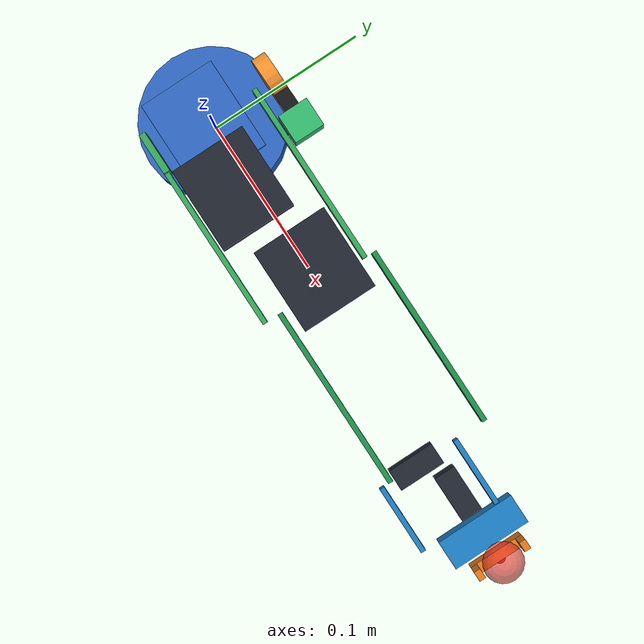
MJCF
<mujoco model="robot_arm_v8_manufacturable">
  <compiler angle="degree" autolimits="true"/>
  <option timestep="0.002" gravity="0 0 -9.80665" integrator="implicitfast"/>
  <default>
    <joint damping="0.02" armature="0.00005" limited="true"/>
    <geom condim="3" friction="0.7 0.01 0.001" solref="0.004 1" solimp="0.95 0.99 0.001" density="0" rgba="0.2 0.65 0.35 1"/>
  </default>
  <worldbody>
    <geom name="base_case" type="cylinder" pos="0 0 0.027" size="0.044 0.027" rgba="0.18 0.40 0.75 1" mass="0.106813"/>
    <body name="turntable" pos="0 0 0.079">
      <joint name="J1_yaw" type="hinge" axis="0 0 1" range="-180 180"/>
      <inertial pos="0.019502 0.003291 -0.010183" mass="0.237298" diaginertia="0.00028 0.00034 0.00040"/>
      <geom name="turntable_deck" type="box" pos="0 -0.006 -0.013" size="0.029 0.024 0.003" rgba="0.18 0.40 0.75 1"/>
      <geom name="j2_servo" type="box" pos="0.04070 -0.0118 0" size="0.0268 0.0238 0.010824" rgba="0.12 0.14 0.18 1"/>
      <geom name="j2_passive_cheek" type="box" pos="0 -0.038 0" size="0.013 0.002 0.019"/>
      <geom name="j2_input_bridge" type="box" pos="0.030545 0.0415 0.008" size="0.009 0.0095 0.016" rgba="0.20 0.72 0.42 1"/>
      <geom name="j2_driver_16t" type="cylinder" pos="0.030545 0.0415 0" euler="90 0 0" size="0.0076 0.0045" contype="0" conaffinity="0" rgba="0.92 0.55 0.16 1"/>
      <geom name="j2_belt_upper" type="box" pos="0.01527 0.0415 0.0120" euler="0 -13.6 0" size="0.016 0.0045 0.0012" contype="0" conaffinity="0" rgba="0.08 0.08 0.08 1"/>
      <geom name="j2_belt_lower" type="box" pos="0.01527 0.0415 -0.0120" euler="0 13.6 0" size="0.016 0.0045 0.0012" contype="0" conaffinity="0" rgba="0.08 0.08 0.08 1"/>
      <body name="upper_arm" pos="0 0 0">
        <joint name="J2_shoulder" type="hinge" axis="0 1 0" range="-90 0"/>
        <inertial pos="0.085582 0.003172 0.002909" mass="0.097406" diaginertia="0.000010 0.00072 0.00072"/>
        <geom name="j2_driven_32t" type="cylinder" pos="0 0.0415 0" euler="90 0 0" size="0.01525 0.0045" contype="0" conaffinity="0" rgba="0.92 0.55 0.16 1"/>
        <geom name="ua_l_top" type="box" pos="0.0575 -0.0385 0.008" size="0.0575 0.0015 0.002"/>
        <geom name="ua_l_bottom" type="box" pos="0.0575 -0.0385 -0.008" size="0.0575 0.0015 0.002"/>
        <geom name="ua_r_top" type="box" pos="0.0575 0.0295 0.008" size="0.0575 0.0015 0.002"/>
        <geom name="ua_r_bottom" type="box" pos="0.0575 0.0295 -0.008" size="0.0575 0.0015 0.002"/>
        <geom name="j3_servo" type="box" pos="0.10485 0.0018 0" size="0.0268 0.0238 0.010824" rgba="0.12 0.14 0.18 1"/>
        <body name="forearm" pos="0.115 0 0">
          <joint name="J3_elbow" type="hinge" axis="0 1 0" range="-90 150"/>
          <inertial pos="0.084706 -0.001301 0.002555" mass="0.031415" diaginertia="0.000004 0.00019 0.00019"/>
          <geom name="fa_l_top" type="box" pos="0.0575 -0.0285 0.008" size="0.0575 0.0015 0.002" rgba="0.1 0.55 0.28 1"/>
          <geom name="fa_l_bottom" type="box" pos="0.0575 -0.0285 -0.008" size="0.0575 0.0015 0.002" rgba="0.1 0.55 0.28 1"/>
          <geom name="fa_r_top" type="box" pos="0.0575 0.0355 0.008" size="0.0575 0.0015 0.002" rgba="0.1 0.55 0.28 1"/>
          <geom name="fa_r_bottom" type="box" pos="0.0575 0.0355 -0.008" size="0.0575 0.0015 0.002" rgba="0.1 0.55 0.28 1"/>
          <geom name="j4_servo" type="box" pos="0.115 -0.0115 0.0053" size="0.006494 0.0143 0.016232" rgba="0.12 0.14 0.18 1"/>
          <body name="wrist_pitch" pos="0.115 0 0">
            <joint name="J4_wrist_pitch" type="hinge" axis="0 1 0" range="-70 60"/>
            <inertial pos="0.035341 -0.007261 0.001114" mass="0.069627" diaginertia="0.000006 0.00005 0.00005"/>
            <geom name="wp_l" type="box" pos="0.0215 -0.0345 0" size="0.0215 0.0015 0.010" rgba="0.1 0.48 0.75 1"/>
            <geom name="wp_r" type="box" pos="0.0215 0.0155 0" size="0.0215 0.0015 0.010" rgba="0.1 0.48 0.75 1"/>
            <geom name="j5_servo" type="box" pos="0.0255 0 0.0053" size="0.0143 0.006494 0.016232" rgba="0.12 0.14 0.18 1"/>
            <geom name="j5_bearing_housing" type="box" pos="0.052 0 0" size="0.009 0.0245 0.015" rgba="0.1 0.48 0.75 1"/>
            <body name="tool" pos="0.043 0 0">
              <joint name="J5_wrist_roll" type="hinge" axis="1 0 0" range="-180 180"/>
              <inertial pos="0.019127 -0.000068 0.002899" mass="0.016010" diaginertia="0.000004 0.000008 0.000008"/>
              <geom name="tool_palm" type="box" pos="0.025 0 0" size="0.003 0.017 0.013" rgba="0.88 0.46 0.1 1"/>
              <geom name="tool_finger_l" type="box" pos="0.025 -0.015 0.030" size="0.003 0.002 0.017" rgba="0.88 0.46 0.1 1"/>
              <geom name="tool_finger_r" type="box" pos="0.025 0.015 0.030" size="0.003 0.002 0.017" rgba="0.88 0.46 0.1 1"/>
              <geom name="payload_50g" type="sphere" pos="0.028 0 0.030" size="0.012" mass="0.050" rgba="0.9 0.2 0.15 0.65"/>
              <site name="tool_tip" pos="0.028 0 0" size="0.003" rgba="1 0 0 1"/>
            </body>
          </body>
        </body>
      </body>
    </body>
  </worldbody>
  <actuator>
    <motor name="J1_MG90S_6to1" joint="J1_yaw" gear="0.690" ctrlrange="-1 1"/>
    <motor name="J2_MG996R_16T_32T_3GT" joint="J2_shoulder" gear="1.6596" ctrlrange="-1 1"/>
    <motor name="J3_MG996R_direct" joint="J3_elbow" gear="0.922" ctrlrange="-1 1"/>
    <motor name="J4_MG90S_direct" joint="J4_wrist_pitch" gear="0.177" ctrlrange="-1 1"/>
    <motor name="J5_MG90S_direct" joint="J5_wrist_roll" gear="0.177" ctrlrange="-1 1"/>
  </actuator>
  <custom>
    <numeric name="J2_servo_to_joint_ratio" data="2.0"/>
    <numeric name="J2_belt_efficiency" data="0.90"/>
    <text name="J2_transmission_id" data="P-J2-BELT"/>
  </custom>
  <keyframe>
    <key name="extended" qpos="0 0 0 0 0"/>
    <key name="folded" qpos="0 -1.396 2.618 -1.222 0"/>
  </keyframe>
</mujoco>
